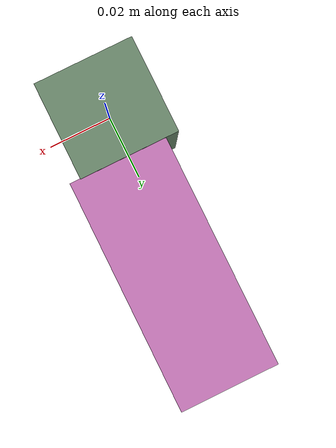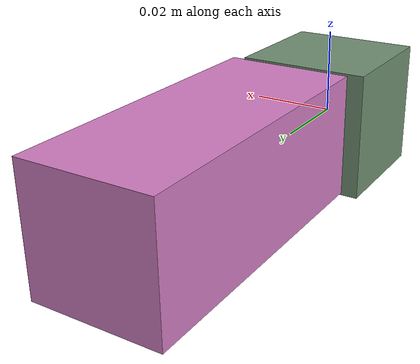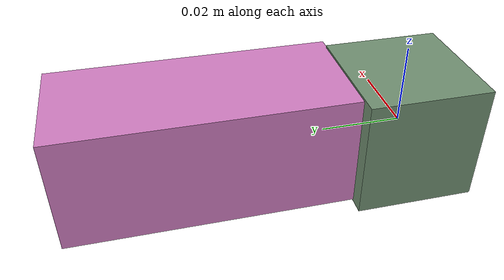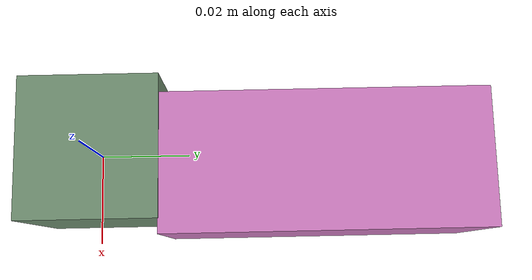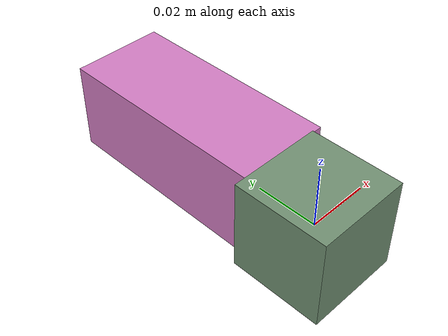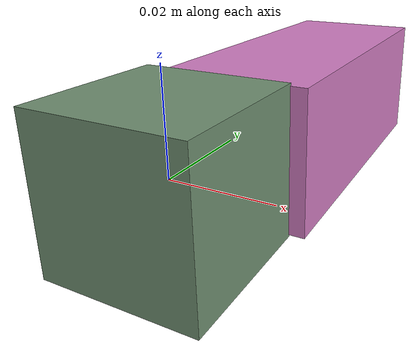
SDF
<sdf version="1.4"><world name="default"><model name="object0"><link name="link1"><pose>0 0 0 0 0 0</pose><inertial><pose>0 0 0 0 0 0</pose><mass>0.016594780007802762</mass><inertia><ixx>2.489217001170414e-06</ixx><ixy>0</ixy><iyy>2.5506161862489064e-06</iyy><ixz>0</ixz><iyz>0</iyz><izz>2.5506161862489064e-06</izz></inertia></inertial><visual name="link1_visual"><pose>0 0  0 0 0 0</pose><geometry><box><size>0.030731074088523637 0.03 0.03</size></box></geometry><material><diffuse>0.44652355010395683 0.569764970080246 0.4521772984723559 1</diffuse></material></visual><collision><pose>0 0  0 0 0 0</pose><geometry><box><size>0.030731074088523637 0.03 0.03</size></box></geometry></collision></link><link name="link2"><pose>0.0036079577265895266 0.05012723787747686 0 0 0 0</pose><inertial><pose>0 0 0 0 0 0</pose><mass>0.03819518979214439</mass><inertia><ixx>1.8601032577209553e-05</ixx><ixy>0</ixy><iyy>5.5414854523436146e-06</iyy><ixz>0</ixz><iyz>0</iyz><izz>1.87888255936876e-05</izz></inertia></inertial><visual name="link2_visual"><pose>0 0  0 0 0 0</pose><geometry><box><size>0.03 0.07073183294841555 0.028999999999999998</size></box></geometry><material><diffuse>0.8301218901134917 0.4963462969291311 0.7700074838958669 1</diffuse></material></visual><collision><pose>0 0  0 0 0 0</pose><geometry><box><size>0.03 0.07073183294841555 0.028999999999999998</size></box></geometry></collision></link><joint name="link_joint_0" type="fixed"><parent>link1</parent><child>link2</child><pose>0 0 0 0 0 0</pose><axis><xyz>0 0 1</xyz></axis></joint></model></world></sdf>
